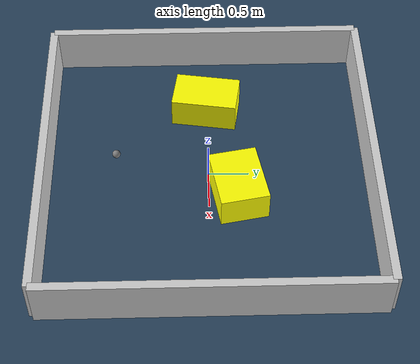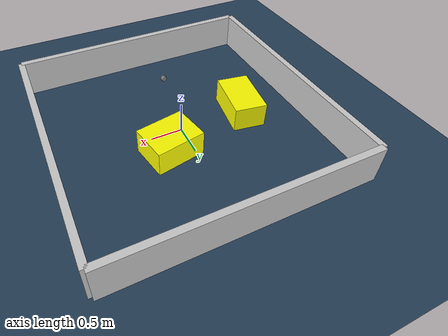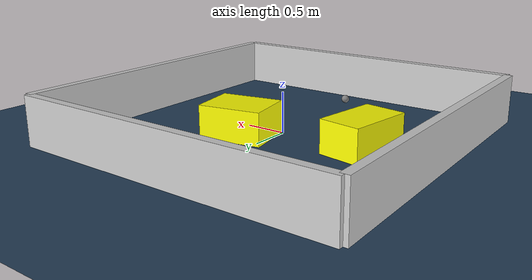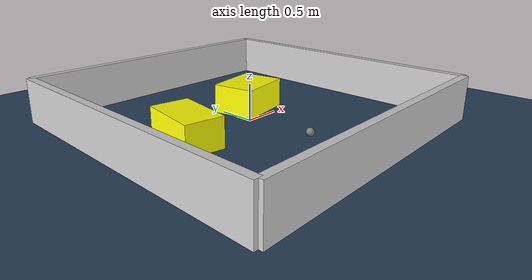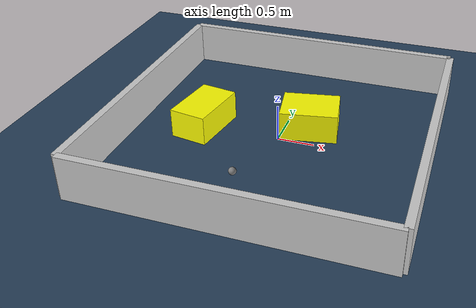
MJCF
<?xml version="1.0" ?>
<mujoco model="generated_environment">
  <option timestep="0.01" integrator="RK4" cone="elliptic"/>
  <default>
    <geom density="1"/>
  </default>
  <asset>
    <texture builtin="gradient" height="3072" rgb1="0.3 0.5 0.7" rgb2="0 0 0" type="skybox" width="512"/>
    <texture builtin="checker" height="300" mark="edge" markrgb="0.8 0.8 0.8" name="groundplane" rgb1="0.2 0.3 0.4" rgb2="0.1 0.2 0.3" type="2d" width="300"/>
    <material name="groundplane" reflectance="0.2" texrepeat="5 5" texture="groundplane" texuniform="true"/>
    <material name="robot" rgba="0.0 1.0 0.0 1"/>
  </asset>
  <worldbody>
    <light dir="0 0 -1" directional="true" pos="0 0 1.5"/>
    <geom condim="4" friction="1.0 0.005 0.001" material="groundplane" name="floor" size="0 0 0.05" type="plane"/>
    <body name="walls">
      <geom name="wall_1" condim="4" pos="-2.0 0.0 0.3" rgba="0.800000011920929 0.800000011920929 0.800000011920929 1.0" size="0.05 2.0 0.3" type="box"/>
      <geom name="wall_2" condim="4" pos="2.0 0.0 0.3" rgba="0.800000011920929 0.800000011920929 0.800000011920929 1.0" size="0.05 2.0 0.3" type="box"/>
      <geom name="wall_3" condim="4" pos="0.0 -2.0 0.3" rgba="0.800000011920929 0.800000011920929 0.800000011920929 1.0" size="2.0 0.05 0.3" type="box"/>
      <geom name="wall_4" condim="4" pos="0.0 2.0 0.3" rgba="0.800000011920929 0.800000011920929 0.800000011920929 1.0" size="2.0 0.05 0.3" type="box"/>
    </body>
    <body name="robot">
      <joint name="joint_x" type="slide" pos="0 0 0" axis="1 0 0"/>
      <joint name="joint_y" type="slide" pos="0 0 0" axis="0 1 0"/>
      <geom name="robot" type="sphere" pos="-0.19312509897216623 -1.1401456174674527 0.2" size="0.05" mass="5." friction="1.0 0.005 0.0001" condim="4"/>
      <site name="sensor_ball"/>
    </body>
    <body name="obstacle_1_movable">
      <geom name="obstacle_1_movable" condim="4" pos="-1.0635795544723163 -0.003210805498063518 0.2" euler="0 0 170.9781091105523" friction="1.0 0.005 0.001" rgba="1 1 0 1" size="0.25639193368832325 0.4112802613229282 0.2" type="box" mass="0.1"/>
      <joint type="free"/>
    </body>
    <body name="obstacle_2_movable">
      <geom name="obstacle_2_movable" condim="4" pos="0.3437653964866354 0.35752497522875126 0.2" euler="0 0 280.43523651628044" friction="1.0 0.005 0.001" rgba="1 1 0 1" size="0.29691678241728164 0.38607798561423545 0.2" type="box" mass="0.1"/>
      <joint type="free"/>
    </body>
  </worldbody>
  <actuator>
    <motor name="actuator_x" joint="joint_x" gear="1" ctrlrange="-1 1"/>
    <motor name="actuator_y" joint="joint_y" gear="1" ctrlrange="-1 1"/>
  </actuator>
</mujoco>
